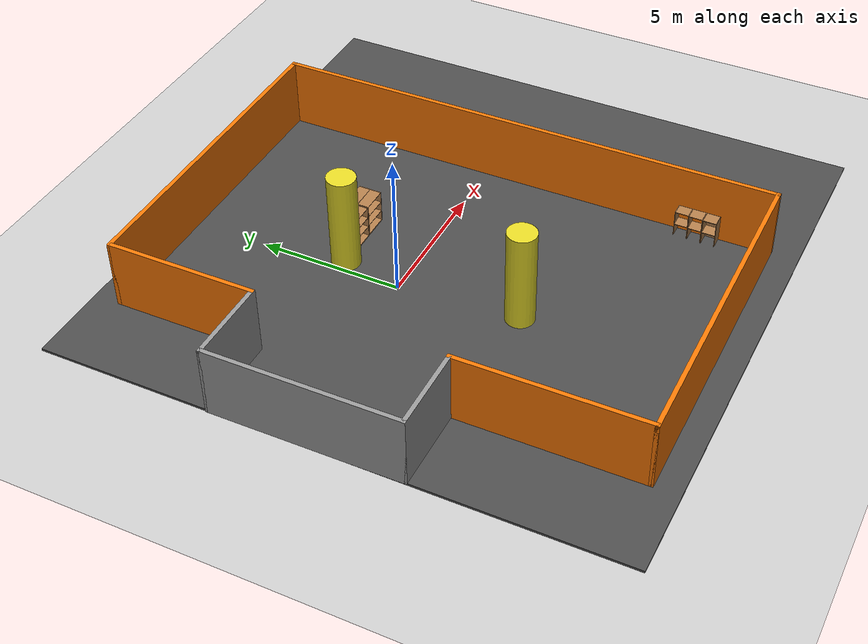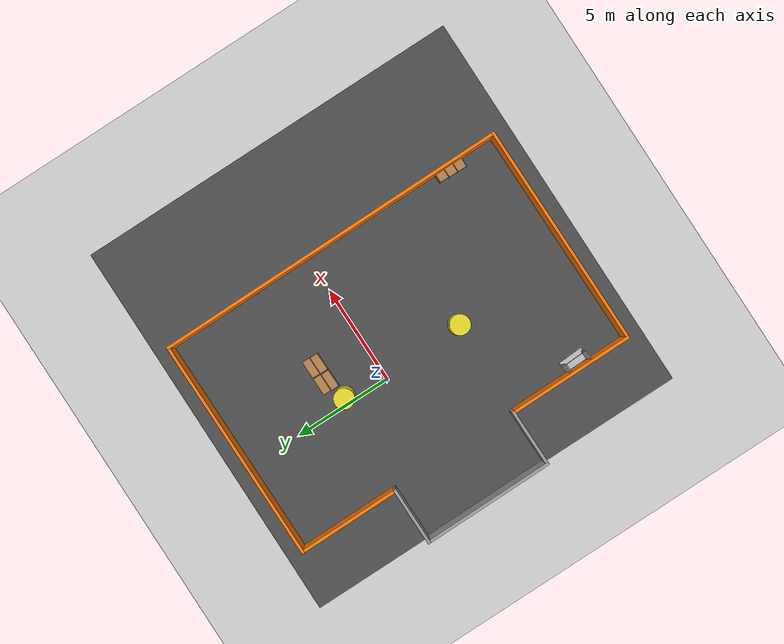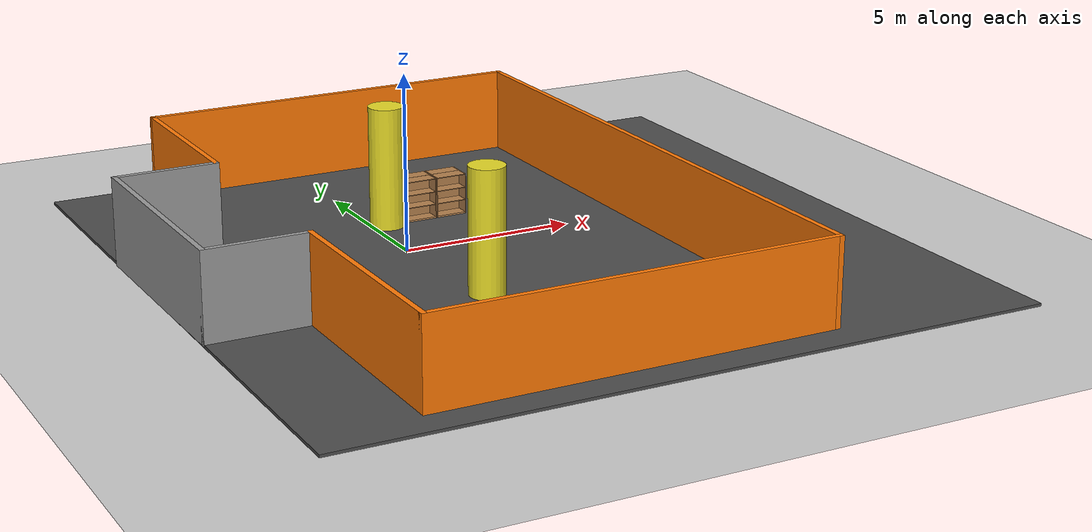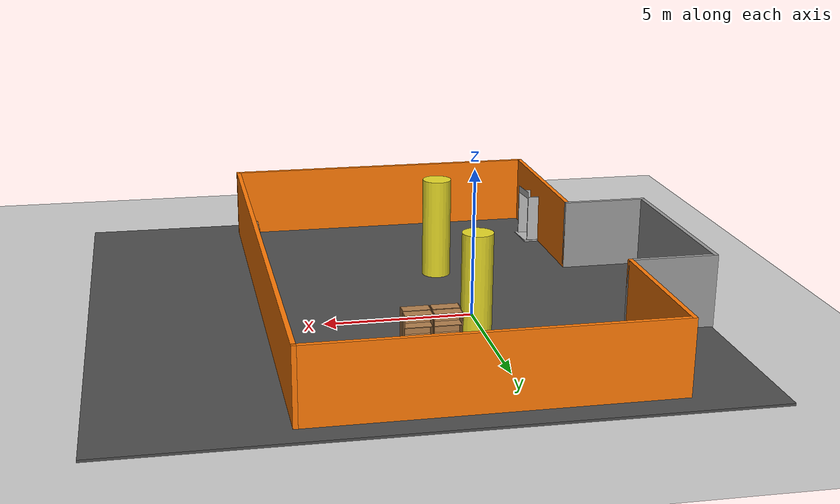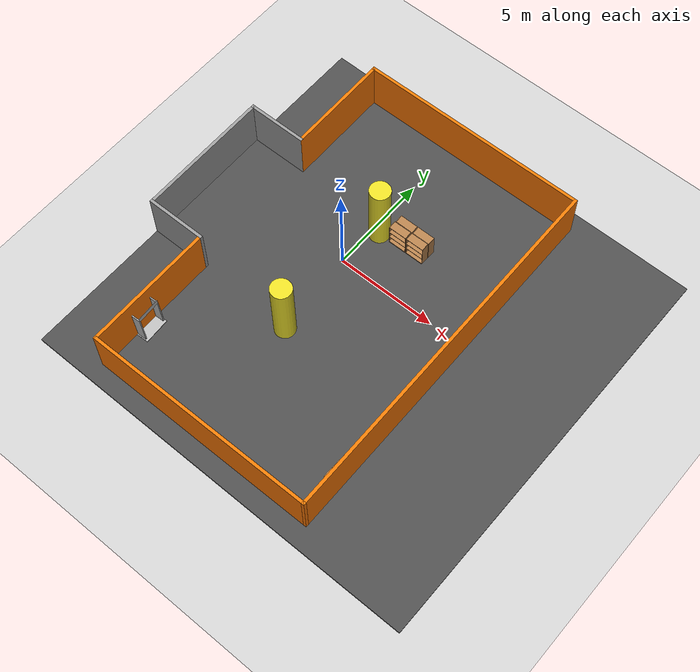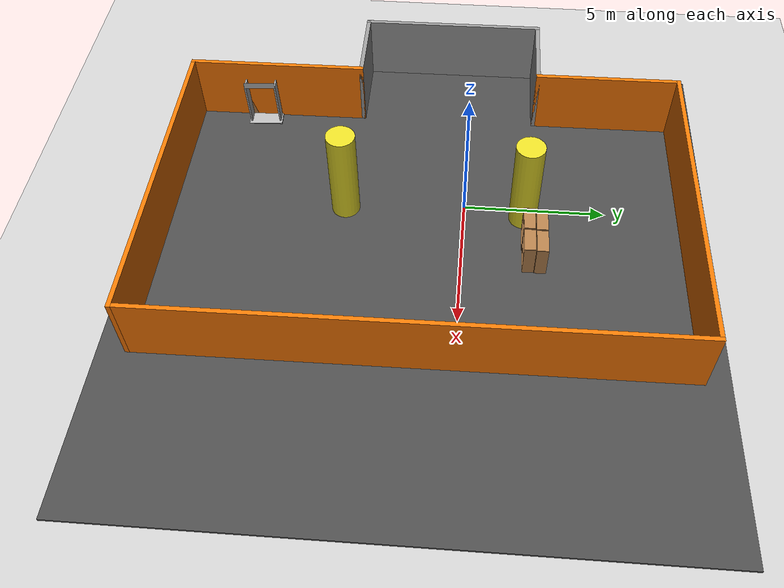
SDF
<sdf version="1.6">
 <world name="default">
  <model name="ground_plane">
   <static>1</static>
   <link name="link">
    <collision name="collision">
     <geometry><plane><normal>0 0 1</normal><size>100 100</size></plane></geometry>
     <surface>
      <contact><collide_bitmask>65535</collide_bitmask></contact>
      <friction><ode><mu>100</mu><mu2>50</mu2></ode></friction>
     </surface>
    </collision>
    <visual name="visual">
     <cast_shadows>0</cast_shadows>
     <geometry><plane><normal>0 0 1</normal><size>100 100</size></plane></geometry>
     <material>
      <script><uri>file://media/materials/scripts/gazebo.material</uri><name>Gazebo/Grey</name></script>
     </material>
    </visual>
   </link>
  </model>
  <model name="room">
   <pose>-0.243156 -1.3901 0 0 0 -1.56463</pose>
   <link name="Wall_0">
    <collision name="Wall_0_Collision">
     <geometry><box><size>3 0.15 2.5</size></box></geometry>
     <pose>0 0 1.25 0 -0 0</pose>
    </collision>
    <visual name="Wall_0_Visual">
     <pose>0 0 1.25 0 -0 0</pose>
     <geometry><box><size>3 0.15 2.5</size></box></geometry>
     <material>
      <script><uri>file://media/materials/scripts/gazebo.material</uri><name>Gazebo/Grey</name></script>
      <ambient>1 1 1 1</ambient>
     </material>
     <meta><layer>0</layer></meta>
    </visual>
    <pose>-3.9 -5.675 0 0 -0 -1.5708</pose>
   </link>
   <link name="Wall_1">
    <collision name="Wall_1_Collision">
     <geometry><box><size>6.75 0.15 2.5</size></box></geometry>
     <pose>0 0 1.25 0 -0 0</pose>
    </collision>
    <visual name="Wall_1_Visual">
     <pose>0 0 1.25 0 -0 0</pose>
     <geometry><box><size>6.75 0.15 2.5</size></box></geometry>
     <material>
      <script><uri>file://media/materials/scripts/gazebo.material</uri><name>Gazebo/Grey</name></script>
      <ambient>1 1 1 1</ambient>
     </material>
     <meta><layer>0</layer></meta>
    </visual>
    <pose>-0.6 -7.1 0 0 -0 0</pose>
   </link>
   <link name="Wall_2">
    <collision name="Wall_2_Collision">
     <geometry><box><size>3 0.15 2.5</size></box></geometry>
     <pose>0 0 1.25 0 -0 0</pose>
    </collision>
    <visual name="Wall_2_Visual">
     <pose>0 0 1.25 0 -0 0</pose>
     <geometry><box><size>3 0.15 2.5</size></box></geometry>
     <material>
      <script><uri>file://media/materials/scripts/gazebo.material</uri><name>Gazebo/Grey</name></script>
      <ambient>1 1 1 1</ambient>
     </material>
     <meta><layer>0</layer></meta>
    </visual>
    <pose>2.7 -5.675 0 0 -0 1.5708</pose>
   </link>
   <link name="Wall_3">
    <collision name="Wall_3_Collision">
     <geometry><box><size>6.5 0.15 2.5</size></box></geometry>
     <pose>0 0 1.25 0 -0 0</pose>
    </collision>
    <visual name="Wall_3_Visual">
     <pose>0 0 1.25 0 -0 0</pose>
     <geometry><box><size>6.5 0.15 2.5</size></box></geometry>
     <material>
      <script><uri>file://media/materials/scripts/gazebo.material</uri><name>Gazebo/Grey</name></script>
      <ambient>0.996078 0.47451 0.0196078 1</ambient>
     </material>
     <meta><layer>0</layer></meta>
    </visual>
    <pose>5.875 -4.25 0 0 -0 0</pose>
   </link>
   <link name="Wall_5">
    <collision name="Wall_5_Collision">
     <geometry><box><size>11.5 0.15 2.5</size></box></geometry>
     <pose>0 0 1.25 0 -0 0</pose>
    </collision>
    <visual name="Wall_5_Visual">
     <pose>0 0 1.25 0 -0 0</pose>
     <geometry><box><size>11.5 0.15 2.5</size></box></geometry>
     <material>
      <script><uri>file://media/materials/scripts/gazebo.material</uri><name>Gazebo/Grey</name></script>
      <ambient>0.996078 0.47451 0.0196078 1</ambient>
     </material>
     <meta><layer>0</layer></meta>
    </visual>
    <pose>9.05 1.425 0 0 -0 1.5708</pose>
   </link>
   <link name="Wall_6">
    <collision name="Wall_6_Collision">
     <geometry><box><size>18.25 0.15 2.5</size></box></geometry>
     <pose>0 0 1.25 0 -0 0</pose>
    </collision>
    <visual name="Wall_6_Visual">
     <pose>0 0 1.25 0 -0 0</pose>
     <geometry><box><size>18.25 0.15 2.5</size></box></geometry>
     <material>
      <script><uri>file://media/materials/scripts/gazebo.material</uri><name>Gazebo/Grey</name></script>
      <ambient>0.996078 0.47451 0.0196078 1</ambient>
     </material>
     <meta><layer>0</layer></meta>
    </visual>
    <pose>0 7.1 0 0 -0 3.14159</pose>
   </link>
   <link name="Wall_7">
    <collision name="Wall_7_Collision">
     <geometry><box><size>11.5 0.15 2.5</size></box></geometry>
     <pose>0 0 1.25 0 -0 0</pose>
    </collision>
    <visual name="Wall_7_Visual">
     <pose>0 0 1.25 0 -0 0</pose>
     <geometry><box><size>11.5 0.15 2.5</size></box></geometry>
     <material>
      <script><uri>file://media/materials/scripts/gazebo.material</uri><name>Gazebo/Grey</name></script>
      <ambient>0.996078 0.47451 0.0196078 1</ambient>
     </material>
     <meta><layer>0</layer></meta>
    </visual>
    <pose>-9.05 1.425 0 0 -0 -1.5708</pose>
   </link>
   <link name="Wall_8">
    <collision name="Wall_8_Collision">
     <geometry><box><size>5.3 0.15 2.5</size></box></geometry>
     <pose>0 0 1.25 0 -0 0</pose>
    </collision>
    <visual name="Wall_8_Visual">
     <pose>0 0 1.25 0 -0 0</pose>
     <geometry><box><size>5.3 0.15 2.5</size></box></geometry>
     <material>
      <script><uri>file://media/materials/scripts/gazebo.material</uri><name>Gazebo/Grey</name></script>
      <ambient>0.996078 0.47451 0.0196078 1</ambient>
     </material>
     <meta><layer>0</layer></meta>
    </visual>
    <pose>-6.475 -4.25 0 0 -0 0</pose>
   </link>
   <static>1</static>
  </model>
  <model name="stone_10_2_5_1cm">
   <link name="link">
    <pose>0 0 0.005 0 -0 0</pose>
    <inertial>
     <mass>0.0628</mass>
     <inertia>
      <ixx>3.79417e-06</ixx>
      <ixy>0</ixy>
      <ixz>0</ixz>
      <iyy>5.28567e-05</iyy>
      <iyz>0</iyz>
      <izz>5.56042e-05</izz>
     </inertia>
    </inertial>
    <collision name="collision">
     <geometry><box><size>0.1 0.025 0.01</size></box></geometry>
     <surface>
      <contact>
       <poissons_ratio>0.15</poissons_ratio>
       <elastic_modulus>8e+10</elastic_modulus>
       <ode><kp>100000</kp><kd>100</kd><max_vel>100</max_vel><min_depth>0.001</min_depth></ode>
      </contact>
      <friction>
       <torsional>
        <coefficient>1</coefficient>
        <use_patch_radius>0</use_patch_radius>
        <surface_radius>0.01</surface_radius>
       </torsional>
      </friction>
     </surface>
    </collision>
    <visual name="visual">
     <geometry><box><size>0.1 0.025 0.01</size></box></geometry>
     <material>
      <script><uri>file://media/materials/scripts/gazebo.material</uri><name>Gazebo/Grey</name></script>
     </material>
    </visual>
   </link>
   <pose>0 0 -0.005 0 -0 0</pose>
  </model>
  <model name="frc2016_drawbridge">
   <link name="base">
    <inertial>
     <mass>10</mass>
     <pose>0 0 1 0 -0 0</pose>
     <inertia><ixx>3.64907</ixx><ixy>0</ixy><ixz>0</ixz><iyy>4.67075</iyy><iyz>0</iyz><izz>1.66649</izz></inertia>
    </inertial>
    <visual name="platform">
     <pose>0 0 0.0425 0 -0 0</pose>
     <geometry><box><size>1.27 0.5969 0.085</size></box></geometry>
    </visual>
    <collision name="platform">
     <pose>0 0 0.0425 0 -0 0</pose>
     <geometry><box><size>1.27 0.5969 0.085</size></box></geometry>
    </collision>
    <visual name="right_wall">
     <pose>0.55879 0.04444 0.889 0 -0 0</pose>
     <geometry><box><size>0.05715 0.45698 1.77165</size></box></geometry>
    </visual>
    <collision name="right_wall">
     <pose>0.55879 0.04444 0.889 0 -0 0</pose>
     <geometry><box><size>0.05715 0.45698 1.77165</size></box></geometry>
    </collision>
    <visual name="left_wall">
     <pose>-0.55879 0.04444 0.889 0 -0 0</pose>
     <geometry><box><size>0.05715 0.45698 1.77165</size></box></geometry>
    </visual>
    <collision name="left_wall">
     <pose>-0.55879 0.04444 0.889 0 -0 0</pose>
     <geometry><box><size>0.05715 0.45698 1.77165</size></box></geometry>
    </collision>
    <visual name="front_upper_wall">
     <pose>0 0.27611 1.84286 0 -0 0</pose>
     <geometry><box><size>1.1557 0.006347 0.254</size></box></geometry>
    </visual>
    <collision name="front_upper_wall">
     <pose>0 0.27611 1.84286 0 -0 0</pose>
     <geometry><box><size>1.1557 0.006347 0.254</size></box></geometry>
    </collision>
    <visual name="back_upper_wall">
     <pose>0 -0.18722 1.84286 0 -0 0</pose>
     <geometry><box><size>1.1557 0.006347 0.254</size></box></geometry>
    </visual>
    <collision name="back_upper_wall">
     <pose>0 -0.18722 1.84286 0 -0 0</pose>
     <geometry><box><size>1.1557 0.006347 0.254</size></box></geometry>
    </collision>
   </link>
   <link name="bridge">
    <pose>0 0.28245 0.50577 0 -0 0</pose>
    <inertial>
     <mass>2</mass>
     <pose>0 -0.28245 -0.50577 0 -0 0</pose>
     <inertia>
      <ixx>0.139361</ixx>
      <ixy>0</ixy>
      <ixz>0</ixz>
      <iyy>0.357088</iyy>
      <iyz>0</iyz>
      <izz>0.217741</izz>
     </inertia>
    </inertial>
    <visual name="visual">
     <geometry><box><size>1.14298 0.006347 0.9144</size></box></geometry>
     <material><script><name>Gazebo/WoodFloor</name><uri>__default__</uri></script></material>
    </visual>
    <collision name="collision"><geometry><box><size>1.14298 0.006347 0.9144</size></box></geometry></collision>
   </link>
   <joint name="bridge_joint" type="revolute">
    <pose>0 0 -0.4172 0 -0 0</pose>
    <parent>base</parent>
    <child>bridge</child>
    <axis>
     <xyz>1 0 0</xyz>
     <limit><lower>-2</lower><upper>0</upper></limit>
     <use_parent_model_frame>0</use_parent_model_frame>
     <dynamics><spring_reference>0</spring_reference><spring_stiffness>0</spring_stiffness></dynamics>
    </axis>
   </joint>
   <pose>-4.11079 -7.91679 0 -0.010755 -0.031899 1.61279</pose>
  </model>
  <model name="cabinet_clone_1">
   <static>1</static>
   <link name="cabinet_bottom_plate">
    <inertial>
     <pose>0 0 -1 0 -0 0</pose>
     <inertia><ixx>2.05</ixx><ixy>0</ixy><ixz>0</ixz><iyy>2.05</iyy><iyz>0</iyz><izz>2.05</izz></inertia>
     <mass>25</mass>
    </inertial>
    <collision name="cabinet_bottom_plate_geom">
     <pose>0 0 0.01 0 -0 0</pose>
     <geometry><box><size>0.45 0.45 0.02</size></box></geometry>
    </collision>
    <visual name="cabinet_bottom_plate_geom_visual">
     <pose>0 0 0.01 0 -0 0</pose>
     <geometry><box><size>0.45 0.45 0.02</size></box></geometry>
     <material>
      <script><uri>file://media/materials/scripts/gazebo.material</uri><name>Gazebo/Wood</name></script>
     </material>
    </visual>
    <collision name="cabinet_bottom_plate_geom_cabinet_back_plate">
     <pose>0.235 0 0.51 0 -0 0</pose>
     <geometry><box><size>0.02 0.45 1.02</size></box></geometry>
    </collision>
    <visual name="cabinet_bottom_plate_geom_cabinet_back_plate_visual">
     <pose>0.235 0 0.51 0 -0 0</pose>
     <geometry><box><size>0.02 0.45 1.02</size></box></geometry>
     <material>
      <script><uri>file://media/materials/scripts/gazebo.material</uri><name>Gazebo/Wood</name></script>
     </material>
    </visual>
    <collision name="cabinet_bottom_plate_geom_cabinet_left_plate">
     <pose>0 0.235 0.51 0 -0 0</pose>
     <geometry><box><size>0.45 0.02 1.02</size></box></geometry>
    </collision>
    <visual name="cabinet_bottom_plate_geom_cabinet_left_plate_visual">
     <pose>0 0.235 0.51 0 -0 0</pose>
     <geometry><box><size>0.45 0.02 1.02</size></box></geometry>
     <material>
      <script><uri>file://media/materials/scripts/gazebo.material</uri><name>Gazebo/Wood</name></script>
     </material>
    </visual>
    <collision name="cabinet_bottom_plate_geom_cabinet_middle_plate">
     <pose>0 0 0.51 0 -0 0</pose>
     <geometry><box><size>0.45 0.45 0.02</size></box></geometry>
    </collision>
    <visual name="cabinet_bottom_plate_geom_cabinet_middle_plate_visual">
     <pose>0 0 0.51 0 -0 0</pose>
     <geometry><box><size>0.45 0.45 0.02</size></box></geometry>
     <material>
      <script><uri>file://media/materials/scripts/gazebo.material</uri><name>Gazebo/Wood</name></script>
     </material>
    </visual>
    <collision name="cabinet_bottom_plate_geom_cabinet_right_plate">
     <pose>0 -0.235 0.51 0 -0 0</pose>
     <geometry><box><size>0.45 0.02 1.02</size></box></geometry>
    </collision>
    <visual name="cabinet_bottom_plate_geom_cabinet_right_plate_visual">
     <pose>0 -0.235 0.51 0 -0 0</pose>
     <geometry><box><size>0.45 0.02 1.02</size></box></geometry>
     <material>
      <script><uri>file://media/materials/scripts/gazebo.material</uri><name>Gazebo/Wood</name></script>
     </material>
    </visual>
    <collision name="cabinet_bottom_plate_geom_cabinet_top_plate">
     <pose>0 0 1.01 0 -0 0</pose>
     <geometry><box><size>0.45 0.45 0.02</size></box></geometry>
    </collision>
    <visual name="cabinet_bottom_plate_geom_cabinet_top_plate_visual">
     <pose>0 0 1.01 0 -0 0</pose>
     <geometry><box><size>0.45 0.45 0.02</size></box></geometry>
     <material>
      <script><uri>file://media/materials/scripts/gazebo.material</uri><name>Gazebo/Wood</name></script>
     </material>
    </visual>
   </link>
   <pose>6.62637 -7.40412 0 0 -0 0</pose>
  </model>
  <model name="cabinet_clone_2">
   <static>1</static>
   <link name="cabinet_bottom_plate">
    <inertial>
     <pose>0 0 -1 0 -0 0</pose>
     <inertia><ixx>2.05</ixx><ixy>0</ixy><ixz>0</ixz><iyy>2.05</iyy><iyz>0</iyz><izz>2.05</izz></inertia>
     <mass>25</mass>
    </inertial>
    <collision name="cabinet_bottom_plate_geom">
     <pose>0 0 0.01 0 -0 0</pose>
     <geometry><box><size>0.45 0.45 0.02</size></box></geometry>
    </collision>
    <visual name="cabinet_bottom_plate_geom_visual">
     <pose>0 0 0.01 0 -0 0</pose>
     <geometry><box><size>0.45 0.45 0.02</size></box></geometry>
     <material>
      <script><uri>file://media/materials/scripts/gazebo.material</uri><name>Gazebo/Wood</name></script>
     </material>
    </visual>
    <collision name="cabinet_bottom_plate_geom_cabinet_back_plate">
     <pose>0.235 0 0.51 0 -0 0</pose>
     <geometry><box><size>0.02 0.45 1.02</size></box></geometry>
    </collision>
    <visual name="cabinet_bottom_plate_geom_cabinet_back_plate_visual">
     <pose>0.235 0 0.51 0 -0 0</pose>
     <geometry><box><size>0.02 0.45 1.02</size></box></geometry>
     <material>
      <script><uri>file://media/materials/scripts/gazebo.material</uri><name>Gazebo/Wood</name></script>
     </material>
    </visual>
    <collision name="cabinet_bottom_plate_geom_cabinet_left_plate">
     <pose>0 0.235 0.51 0 -0 0</pose>
     <geometry><box><size>0.45 0.02 1.02</size></box></geometry>
    </collision>
    <visual name="cabinet_bottom_plate_geom_cabinet_left_plate_visual">
     <pose>0 0.235 0.51 0 -0 0</pose>
     <geometry><box><size>0.45 0.02 1.02</size></box></geometry>
     <material>
      <script><uri>file://media/materials/scripts/gazebo.material</uri><name>Gazebo/Wood</name></script>
     </material>
    </visual>
    <collision name="cabinet_bottom_plate_geom_cabinet_middle_plate">
     <pose>0 0 0.51 0 -0 0</pose>
     <geometry><box><size>0.45 0.45 0.02</size></box></geometry>
    </collision>
    <visual name="cabinet_bottom_plate_geom_cabinet_middle_plate_visual">
     <pose>0 0 0.51 0 -0 0</pose>
     <geometry><box><size>0.45 0.45 0.02</size></box></geometry>
     <material>
      <script><uri>file://media/materials/scripts/gazebo.material</uri><name>Gazebo/Wood</name></script>
     </material>
    </visual>
    <collision name="cabinet_bottom_plate_geom_cabinet_right_plate">
     <pose>0 -0.235 0.51 0 -0 0</pose>
     <geometry><box><size>0.45 0.02 1.02</size></box></geometry>
    </collision>
    <visual name="cabinet_bottom_plate_geom_cabinet_right_plate_visual">
     <pose>0 -0.235 0.51 0 -0 0</pose>
     <geometry><box><size>0.45 0.02 1.02</size></box></geometry>
     <material>
      <script><uri>file://media/materials/scripts/gazebo.material</uri><name>Gazebo/Wood</name></script>
     </material>
    </visual>
    <collision name="cabinet_bottom_plate_geom_cabinet_top_plate">
     <pose>0 0 1.01 0 -0 0</pose>
     <geometry><box><size>0.45 0.45 0.02</size></box></geometry>
    </collision>
    <visual name="cabinet_bottom_plate_geom_cabinet_top_plate_visual">
     <pose>0 0 1.01 0 -0 0</pose>
     <geometry><box><size>0.45 0.45 0.02</size></box></geometry>
     <material>
      <script><uri>file://media/materials/scripts/gazebo.material</uri><name>Gazebo/Wood</name></script>
     </material>
    </visual>
   </link>
   <pose>6.60812 -7.89179 0 0 -0 0</pose>
  </model>
  <model name="cabinet_clone_3">
   <static>1</static>
   <link name="cabinet_bottom_plate">
    <inertial>
     <pose>0 0 -1 0 -0 0</pose>
     <inertia><ixx>2.05</ixx><ixy>0</ixy><ixz>0</ixz><iyy>2.05</iyy><iyz>0</iyz><izz>2.05</izz></inertia>
     <mass>25</mass>
    </inertial>
    <collision name="cabinet_bottom_plate_geom">
     <pose>0 0 0.01 0 -0 0</pose>
     <geometry><box><size>0.45 0.45 0.02</size></box></geometry>
    </collision>
    <visual name="cabinet_bottom_plate_geom_visual">
     <pose>0 0 0.01 0 -0 0</pose>
     <geometry><box><size>0.45 0.45 0.02</size></box></geometry>
     <material>
      <script><uri>file://media/materials/scripts/gazebo.material</uri><name>Gazebo/Wood</name></script>
     </material>
    </visual>
    <collision name="cabinet_bottom_plate_geom_cabinet_back_plate">
     <pose>0.235 0 0.51 0 -0 0</pose>
     <geometry><box><size>0.02 0.45 1.02</size></box></geometry>
    </collision>
    <visual name="cabinet_bottom_plate_geom_cabinet_back_plate_visual">
     <pose>0.235 0 0.51 0 -0 0</pose>
     <geometry><box><size>0.02 0.45 1.02</size></box></geometry>
     <material>
      <script><uri>file://media/materials/scripts/gazebo.material</uri><name>Gazebo/Wood</name></script>
     </material>
    </visual>
    <collision name="cabinet_bottom_plate_geom_cabinet_left_plate">
     <pose>0 0.235 0.51 0 -0 0</pose>
     <geometry><box><size>0.45 0.02 1.02</size></box></geometry>
    </collision>
    <visual name="cabinet_bottom_plate_geom_cabinet_left_plate_visual">
     <pose>0 0.235 0.51 0 -0 0</pose>
     <geometry><box><size>0.45 0.02 1.02</size></box></geometry>
     <material>
      <script><uri>file://media/materials/scripts/gazebo.material</uri><name>Gazebo/Wood</name></script>
     </material>
    </visual>
    <collision name="cabinet_bottom_plate_geom_cabinet_middle_plate">
     <pose>0 0 0.51 0 -0 0</pose>
     <geometry><box><size>0.45 0.45 0.02</size></box></geometry>
    </collision>
    <visual name="cabinet_bottom_plate_geom_cabinet_middle_plate_visual">
     <pose>0 0 0.51 0 -0 0</pose>
     <geometry><box><size>0.45 0.45 0.02</size></box></geometry>
     <material>
      <script><uri>file://media/materials/scripts/gazebo.material</uri><name>Gazebo/Wood</name></script>
     </material>
    </visual>
    <collision name="cabinet_bottom_plate_geom_cabinet_right_plate">
     <pose>0 -0.235 0.51 0 -0 0</pose>
     <geometry><box><size>0.45 0.02 1.02</size></box></geometry>
    </collision>
    <visual name="cabinet_bottom_plate_geom_cabinet_right_plate_visual">
     <pose>0 -0.235 0.51 0 -0 0</pose>
     <geometry><box><size>0.45 0.02 1.02</size></box></geometry>
     <material>
      <script><uri>file://media/materials/scripts/gazebo.material</uri><name>Gazebo/Wood</name></script>
     </material>
    </visual>
    <collision name="cabinet_bottom_plate_geom_cabinet_top_plate">
     <pose>0 0 1.01 0 -0 0</pose>
     <geometry><box><size>0.45 0.45 0.02</size></box></geometry>
    </collision>
    <visual name="cabinet_bottom_plate_geom_cabinet_top_plate_visual">
     <pose>0 0 1.01 0 -0 0</pose>
     <geometry><box><size>0.45 0.45 0.02</size></box></geometry>
     <material>
      <script><uri>file://media/materials/scripts/gazebo.material</uri><name>Gazebo/Wood</name></script>
     </material>
    </visual>
   </link>
   <pose>6.59588 -8.38484 0 0 -0 0</pose>
  </model>
  <model name="bookshelf_clone_clone_clone_1_clone">
   <static>1</static>
   <link name="link">
    <inertial><mass>1</mass></inertial>
    <collision name="back">
     <pose>0 0.005 0.6 0 -0 0</pose>
     <geometry><box><size>0.9 0.01 1.2</size></box></geometry>
    </collision>
    <visual name="visual1">
     <pose>0 0.005 0.6 0 -0 0</pose>
     <geometry><box><size>0.9 0.01 1.2</size></box></geometry>
     <material>
      <script><uri>file://media/materials/scripts/gazebo.material</uri><name>Gazebo/Wood</name></script>
     </material>
    </visual>
    <collision name="left_side">
     <pose>0.45 -0.195 0.6 0 -0 0</pose>
     <geometry><box><size>0.02 0.4 1.2</size></box></geometry>
    </collision>
    <visual name="visual2">
     <pose>0.45 -0.195 0.6 0 -0 0</pose>
     <geometry><box><size>0.02 0.4 1.2</size></box></geometry>
     <material>
      <script><uri>file://media/materials/scripts/gazebo.material</uri><name>Gazebo/Wood</name></script>
     </material>
    </visual>
    <collision name="right_side">
     <pose>-0.45 -0.195 0.6 0 -0 0</pose>
     <geometry><box><size>0.02 0.4 1.2</size></box></geometry>
    </collision>
    <visual name="visual3">
     <pose>-0.45 -0.195 0.6 0 -0 0</pose>
     <geometry><box><size>0.02 0.4 1.2</size></box></geometry>
     <material>
      <script><uri>file://media/materials/scripts/gazebo.material</uri><name>Gazebo/Wood</name></script>
     </material>
    </visual>
    <collision name="bottom">
     <pose>0 -0.195 0.03 0 -0 0</pose>
     <geometry><box><size>0.88 0.4 0.06</size></box></geometry>
    </collision>
    <visual name="visual4">
     <pose>0 -0.195 0.03 0 -0 0</pose>
     <geometry><box><size>0.88 0.4 0.06</size></box></geometry>
     <material>
      <script><uri>file://media/materials/scripts/gazebo.material</uri><name>Gazebo/Wood</name></script>
     </material>
    </visual>
    <collision name="top">
     <pose>0 -0.195 1.19 0 -0 0</pose>
     <geometry><box><size>0.88 0.4 0.02</size></box></geometry>
    </collision>
    <visual name="visual5">
     <pose>0 -0.195 1.19 0 -0 0</pose>
     <geometry><box><size>0.88 0.4 0.02</size></box></geometry>
     <material>
      <script><uri>file://media/materials/scripts/gazebo.material</uri><name>Gazebo/Wood</name></script>
     </material>
    </visual>
    <collision name="low_shelf">
     <pose>0 -0.195 0.43 0 -0 0</pose>
     <geometry><box><size>0.88 0.4 0.02</size></box></geometry>
    </collision>
    <visual name="visual6">
     <pose>0 -0.195 0.43 0 -0 0</pose>
     <geometry><box><size>0.88 0.4 0.02</size></box></geometry>
     <material>
      <script><uri>file://media/materials/scripts/gazebo.material</uri><name>Gazebo/Wood</name></script>
     </material>
    </visual>
    <collision name="high_shelf">
     <pose>0 -0.195 0.8 0 -0 0</pose>
     <geometry><box><size>0.88 0.4 0.02</size></box></geometry>
    </collision>
    <visual name="visual7">
     <pose>0 -0.195 0.8 0 -0 0</pose>
     <geometry><box><size>0.88 0.4 0.02</size></box></geometry>
     <material>
      <script><uri>file://media/materials/scripts/gazebo.material</uri><name>Gazebo/Wood</name></script>
     </material>
    </visual>
   </link>
   <pose>2.39819 2.50195 0.027497 0 0 -3.13702</pose>
  </model>
  <model name="bookshelf_clone_clone_clone_1_clone_0">
   <static>1</static>
   <link name="link">
    <inertial><mass>1</mass></inertial>
    <collision name="back">
     <pose>0 0.005 0.6 0 -0 0</pose>
     <geometry><box><size>0.9 0.01 1.2</size></box></geometry>
    </collision>
    <visual name="visual1">
     <pose>0 0.005 0.6 0 -0 0</pose>
     <geometry><box><size>0.9 0.01 1.2</size></box></geometry>
     <material>
      <script><uri>file://media/materials/scripts/gazebo.material</uri><name>Gazebo/Wood</name></script>
     </material>
    </visual>
    <collision name="left_side">
     <pose>0.45 -0.195 0.6 0 -0 0</pose>
     <geometry><box><size>0.02 0.4 1.2</size></box></geometry>
    </collision>
    <visual name="visual2">
     <pose>0.45 -0.195 0.6 0 -0 0</pose>
     <geometry><box><size>0.02 0.4 1.2</size></box></geometry>
     <material>
      <script><uri>file://media/materials/scripts/gazebo.material</uri><name>Gazebo/Wood</name></script>
     </material>
    </visual>
    <collision name="right_side">
     <pose>-0.45 -0.195 0.6 0 -0 0</pose>
     <geometry><box><size>0.02 0.4 1.2</size></box></geometry>
    </collision>
    <visual name="visual3">
     <pose>-0.45 -0.195 0.6 0 -0 0</pose>
     <geometry><box><size>0.02 0.4 1.2</size></box></geometry>
     <material>
      <script><uri>file://media/materials/scripts/gazebo.material</uri><name>Gazebo/Wood</name></script>
     </material>
    </visual>
    <collision name="bottom">
     <pose>0 -0.195 0.03 0 -0 0</pose>
     <geometry><box><size>0.88 0.4 0.06</size></box></geometry>
    </collision>
    <visual name="visual4">
     <pose>0 -0.195 0.03 0 -0 0</pose>
     <geometry><box><size>0.88 0.4 0.06</size></box></geometry>
     <material>
      <script><uri>file://media/materials/scripts/gazebo.material</uri><name>Gazebo/Wood</name></script>
     </material>
    </visual>
    <collision name="top">
     <pose>0 -0.195 1.19 0 -0 0</pose>
     <geometry><box><size>0.88 0.4 0.02</size></box></geometry>
    </collision>
    <visual name="visual5">
     <pose>0 -0.195 1.19 0 -0 0</pose>
     <geometry><box><size>0.88 0.4 0.02</size></box></geometry>
     <material>
      <script><uri>file://media/materials/scripts/gazebo.material</uri><name>Gazebo/Wood</name></script>
     </material>
    </visual>
    <collision name="low_shelf">
     <pose>0 -0.195 0.43 0 -0 0</pose>
     <geometry><box><size>0.88 0.4 0.02</size></box></geometry>
    </collision>
    <visual name="visual6">
     <pose>0 -0.195 0.43 0 -0 0</pose>
     <geometry><box><size>0.88 0.4 0.02</size></box></geometry>
     <material>
      <script><uri>file://media/materials/scripts/gazebo.material</uri><name>Gazebo/Wood</name></script>
     </material>
    </visual>
    <collision name="high_shelf">
     <pose>0 -0.195 0.8 0 -0 0</pose>
     <geometry><box><size>0.88 0.4 0.02</size></box></geometry>
    </collision>
    <visual name="visual7">
     <pose>0 -0.195 0.8 0 -0 0</pose>
     <geometry><box><size>0.88 0.4 0.02</size></box></geometry>
     <material>
      <script><uri>file://media/materials/scripts/gazebo.material</uri><name>Gazebo/Wood</name></script>
     </material>
    </visual>
   </link>
   <pose>1.45858 2.49512 0.027497 0 0 -3.13702</pose>
  </model>
  <model name="asphalt_plane">
   <static>1</static>
   <link name="link">
    <collision name="collision"><geometry><box><size>20 20 0.1</size></box></geometry></collision>
    <visual name="visual">
     <cast_shadows>0</cast_shadows>
     <geometry><box><size>20 20 0.1</size></box></geometry>
     <material>
      <script>
       <uri>model://asphalt_plane/materials/scripts</uri>
       <uri>model://asphalt_plane/materials/textures</uri>
       <name>vrc/asphalt</name>
      </script>
     </material>
    </visual>
   </link>
   <pose>2.60888 -1.39738 0 0 -0 0</pose>
  </model>
  <model name="pillar_m_clone">
   <link name="link">
    <inertial>
     <mass>1000</mass>
     <inertia><ixx>1</ixx><ixy>0</ixy><ixz>0</ixz><iyy>1</iyy><iyz>0</iyz><izz>1</izz></inertia>
    </inertial>
    <visual name="visual">
     <geometry><cylinder><radius>0.5</radius><length>3.5</length></cylinder></geometry>
     <material>
      <script><name>Gazebo/Yellow</name><uri>file://media/materials/scripts/gazebo.material</uri></script>
      <shader type="pixel"><normal_map>__default__</normal_map></shader>
      <ambient>0.988 0.914 0.31 1</ambient>
      <diffuse>0.7 0.7 0.7 1</diffuse>
      <specular>0.01 0.01 0.01 1</specular>
      <emissive>0 0 0 1</emissive>
     </material>
    </visual>
    <collision name="collision">
     <geometry><cylinder><radius>0.5</radius><length>3.5</length></cylinder></geometry>
    </collision>
   </link>
   <static>0</static>
   <pose>0.385525 2.10692 1.80307 0 -0 0</pose>
  </model>
  <model name="pillar_m_clone_clone">
   <link name="link">
    <inertial>
     <mass>1000</mass>
     <inertia><ixx>1</ixx><ixy>0</ixy><ixz>0</ixz><iyy>1</iyy><iyz>0</iyz><izz>1</izz></inertia>
    </inertial>
    <visual name="visual">
     <geometry><cylinder><radius>0.5</radius><length>3.5</length></cylinder></geometry>
     <material>
      <script><name>Gazebo/Yellow</name><uri>file://media/materials/scripts/gazebo.material</uri></script>
      <shader type="pixel"><normal_map>__default__</normal_map></shader>
      <ambient>0.988 0.914 0.31 1</ambient>
      <diffuse>0.7 0.7 0.7 1</diffuse>
      <specular>0.01 0.01 0.01 1</specular>
      <emissive>0 0 0 1</emissive>
     </material>
    </visual>
    <collision name="collision">
     <geometry><cylinder><radius>0.5</radius><length>3.5</length></cylinder></geometry>
    </collision>
   </link>
   <static>0</static>
   <pose>0.331721 -4.22519 1.81033 0 -0 0</pose>
  </model>
  <model name="bookshelf_clone_clone_clone_clone">
   <static>1</static>
   <link name="link">
    <inertial><mass>1</mass></inertial>
    <collision name="back">
     <pose>0 0.005 0.6 0 -0 0</pose>
     <geometry><box><size>0.9 0.01 1.2</size></box></geometry>
    </collision>
    <visual name="visual1">
     <pose>0 0.005 0.6 0 -0 0</pose>
     <geometry><box><size>0.9 0.01 1.2</size></box></geometry>
     <material>
      <script><uri>file://media/materials/scripts/gazebo.material</uri><name>Gazebo/Wood</name></script>
     </material>
    </visual>
    <collision name="left_side">
     <pose>0.45 -0.195 0.6 0 -0 0</pose>
     <geometry><box><size>0.02 0.4 1.2</size></box></geometry>
    </collision>
    <visual name="visual2">
     <pose>0.45 -0.195 0.6 0 -0 0</pose>
     <geometry><box><size>0.02 0.4 1.2</size></box></geometry>
     <material>
      <script><uri>file://media/materials/scripts/gazebo.material</uri><name>Gazebo/Wood</name></script>
     </material>
    </visual>
    <collision name="right_side">
     <pose>-0.45 -0.195 0.6 0 -0 0</pose>
     <geometry><box><size>0.02 0.4 1.2</size></box></geometry>
    </collision>
    <visual name="visual3">
     <pose>-0.45 -0.195 0.6 0 -0 0</pose>
     <geometry><box><size>0.02 0.4 1.2</size></box></geometry>
     <material>
      <script><uri>file://media/materials/scripts/gazebo.material</uri><name>Gazebo/Wood</name></script>
     </material>
    </visual>
    <collision name="bottom">
     <pose>0 -0.195 0.03 0 -0 0</pose>
     <geometry><box><size>0.88 0.4 0.06</size></box></geometry>
    </collision>
    <visual name="visual4">
     <pose>0 -0.195 0.03 0 -0 0</pose>
     <geometry><box><size>0.88 0.4 0.06</size></box></geometry>
     <material>
      <script><uri>file://media/materials/scripts/gazebo.material</uri><name>Gazebo/Wood</name></script>
     </material>
    </visual>
    <collision name="top">
     <pose>0 -0.195 1.19 0 -0 0</pose>
     <geometry><box><size>0.88 0.4 0.02</size></box></geometry>
    </collision>
    <visual name="visual5">
     <pose>0 -0.195 1.19 0 -0 0</pose>
     <geometry><box><size>0.88 0.4 0.02</size></box></geometry>
     <material>
      <script><uri>file://media/materials/scripts/gazebo.material</uri><name>Gazebo/Wood</name></script>
     </material>
    </visual>
    <collision name="low_shelf">
     <pose>0 -0.195 0.43 0 -0 0</pose>
     <geometry><box><size>0.88 0.4 0.02</size></box></geometry>
    </collision>
    <visual name="visual6">
     <pose>0 -0.195 0.43 0 -0 0</pose>
     <geometry><box><size>0.88 0.4 0.02</size></box></geometry>
     <material>
      <script><uri>file://media/materials/scripts/gazebo.material</uri><name>Gazebo/Wood</name></script>
     </material>
    </visual>
    <collision name="high_shelf">
     <pose>0 -0.195 0.8 0 -0 0</pose>
     <geometry><box><size>0.88 0.4 0.02</size></box></geometry>
    </collision>
    <visual name="visual7">
     <pose>0 -0.195 0.8 0 -0 0</pose>
     <geometry><box><size>0.88 0.4 0.02</size></box></geometry>
     <material>
      <script><uri>file://media/materials/scripts/gazebo.material</uri><name>Gazebo/Wood</name></script>
     </material>
    </visual>
   </link>
   <pose>2.38002 2.47138 0.037852 0 -0 0.010513</pose>
  </model>
  <model name="bookshelf_clone_clone_clone_clone_clone">
   <static>1</static>
   <link name="link">
    <inertial><mass>1</mass></inertial>
    <collision name="back">
     <pose>0 0.005 0.6 0 -0 0</pose>
     <geometry><box><size>0.9 0.01 1.2</size></box></geometry>
    </collision>
    <visual name="visual1">
     <pose>0 0.005 0.6 0 -0 0</pose>
     <geometry><box><size>0.9 0.01 1.2</size></box></geometry>
     <material>
      <script><uri>file://media/materials/scripts/gazebo.material</uri><name>Gazebo/Wood</name></script>
     </material>
    </visual>
    <collision name="left_side">
     <pose>0.45 -0.195 0.6 0 -0 0</pose>
     <geometry><box><size>0.02 0.4 1.2</size></box></geometry>
    </collision>
    <visual name="visual2">
     <pose>0.45 -0.195 0.6 0 -0 0</pose>
     <geometry><box><size>0.02 0.4 1.2</size></box></geometry>
     <material>
      <script><uri>file://media/materials/scripts/gazebo.material</uri><name>Gazebo/Wood</name></script>
     </material>
    </visual>
    <collision name="right_side">
     <pose>-0.45 -0.195 0.6 0 -0 0</pose>
     <geometry><box><size>0.02 0.4 1.2</size></box></geometry>
    </collision>
    <visual name="visual3">
     <pose>-0.45 -0.195 0.6 0 -0 0</pose>
     <geometry><box><size>0.02 0.4 1.2</size></box></geometry>
     <material>
      <script><uri>file://media/materials/scripts/gazebo.material</uri><name>Gazebo/Wood</name></script>
     </material>
    </visual>
    <collision name="bottom">
     <pose>0 -0.195 0.03 0 -0 0</pose>
     <geometry><box><size>0.88 0.4 0.06</size></box></geometry>
    </collision>
    <visual name="visual4">
     <pose>0 -0.195 0.03 0 -0 0</pose>
     <geometry><box><size>0.88 0.4 0.06</size></box></geometry>
     <material>
      <script><uri>file://media/materials/scripts/gazebo.material</uri><name>Gazebo/Wood</name></script>
     </material>
    </visual>
    <collision name="top">
     <pose>0 -0.195 1.19 0 -0 0</pose>
     <geometry><box><size>0.88 0.4 0.02</size></box></geometry>
    </collision>
    <visual name="visual5">
     <pose>0 -0.195 1.19 0 -0 0</pose>
     <geometry><box><size>0.88 0.4 0.02</size></box></geometry>
     <material>
      <script><uri>file://media/materials/scripts/gazebo.material</uri><name>Gazebo/Wood</name></script>
     </material>
    </visual>
    <collision name="low_shelf">
     <pose>0 -0.195 0.43 0 -0 0</pose>
     <geometry><box><size>0.88 0.4 0.02</size></box></geometry>
    </collision>
    <visual name="visual6">
     <pose>0 -0.195 0.43 0 -0 0</pose>
     <geometry><box><size>0.88 0.4 0.02</size></box></geometry>
     <material>
      <script><uri>file://media/materials/scripts/gazebo.material</uri><name>Gazebo/Wood</name></script>
     </material>
    </visual>
    <collision name="high_shelf">
     <pose>0 -0.195 0.8 0 -0 0</pose>
     <geometry><box><size>0.88 0.4 0.02</size></box></geometry>
    </collision>
    <visual name="visual7">
     <pose>0 -0.195 0.8 0 -0 0</pose>
     <geometry><box><size>0.88 0.4 0.02</size></box></geometry>
     <material>
      <script><uri>file://media/materials/scripts/gazebo.material</uri><name>Gazebo/Wood</name></script>
     </material>
    </visual>
   </link>
   <pose>1.43231 2.45878 0.037852 0 -0 0.010513</pose>
  </model>
 </world>
</sdf>
